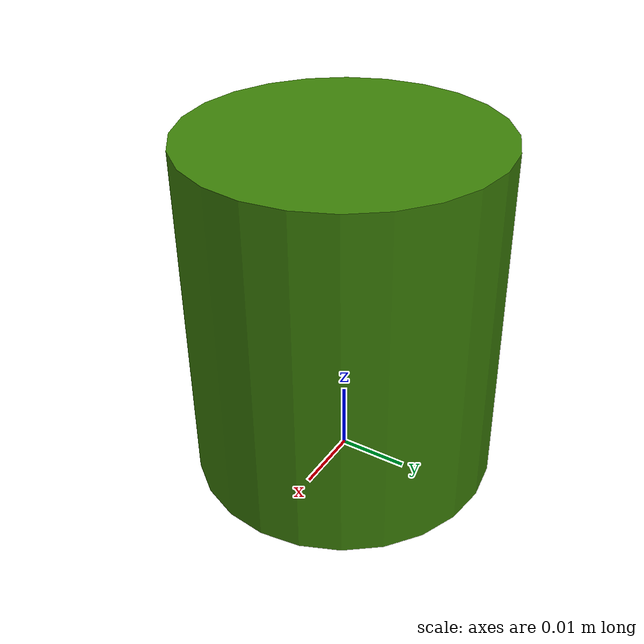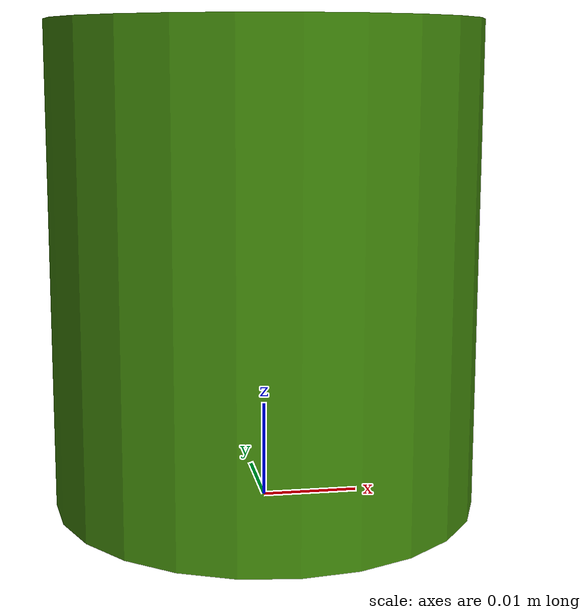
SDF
<?xml version="1.0"?>
<sdf version="1.9">
  <model name="cylindre_vert">
    <link name="corps">
      <pose>0 0 0.025000 0 0 0</pose>
      <inertial>
        <mass>0.038013</mass>
        <inertia>
          <ixx>0.000012519</ixx><iyy>0.000012519</iyy><izz>0.000009199</izz>
          <ixy>0</ixy><ixz>0</ixz><iyz>0</iyz>
        </inertia>
      </inertial>
      <collision name="collision">
        <geometry><cylinder><radius>0.022000</radius><length>0.050000</length></cylinder></geometry>
        <surface>
          <friction><ode><mu>1.0</mu><mu2>1.0</mu2></ode></friction>
        </surface>
      </collision>
      <visual name="visual">
        <geometry><cylinder><radius>0.022000</radius><length>0.050000</length></cylinder></geometry>
        <material>
          <ambient>0.239 0.510 0.031 1</ambient>
          <diffuse>0.239 0.510 0.031 1</diffuse>
          <specular>0.1 0.1 0.1 1</specular>
        </material>
      </visual>
    </link>
  </model>
</sdf>
